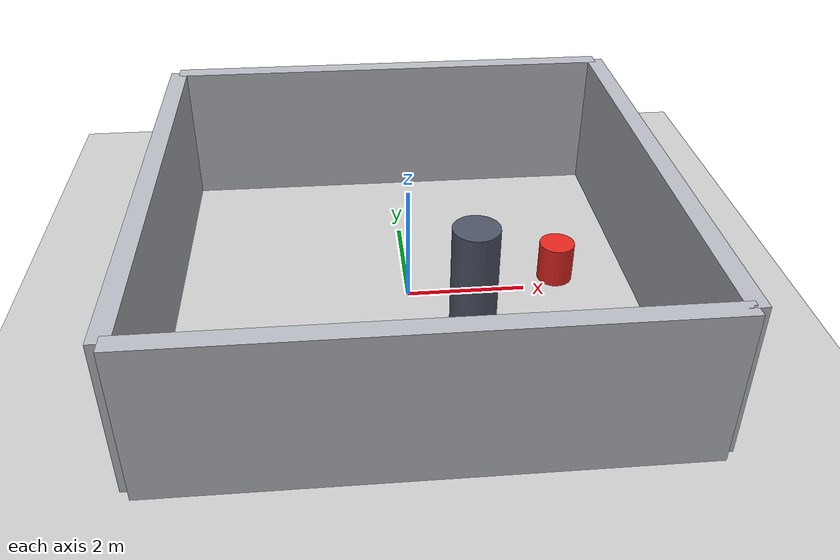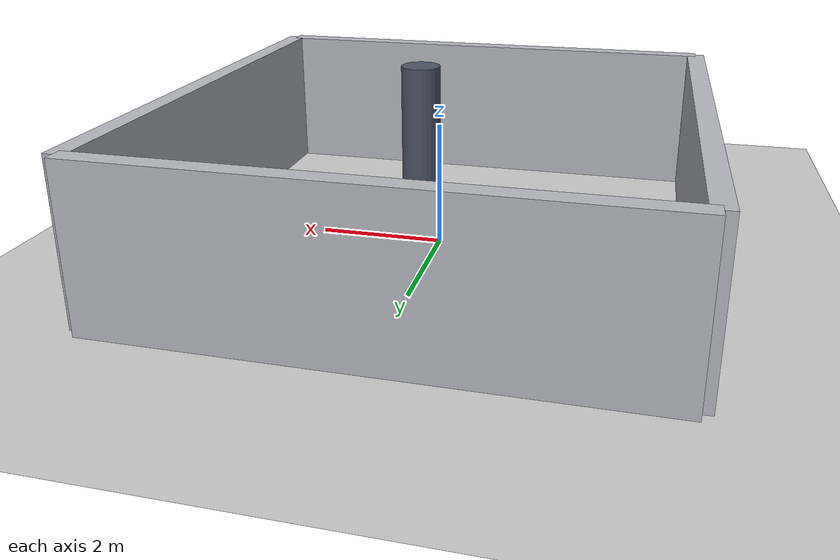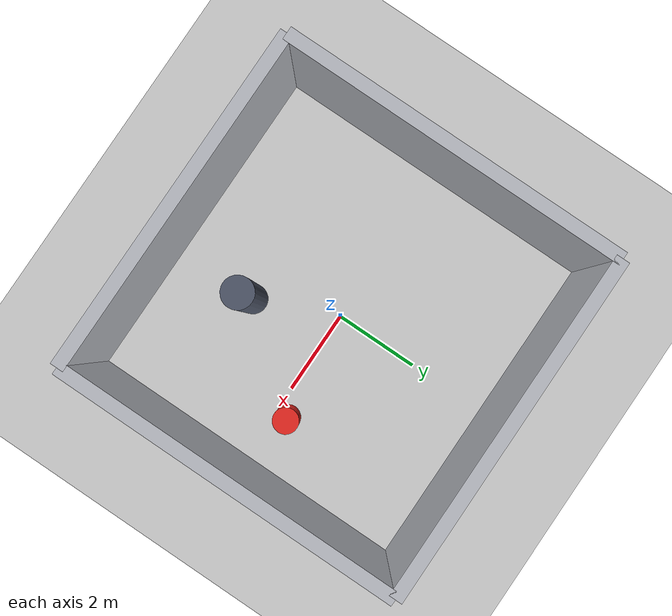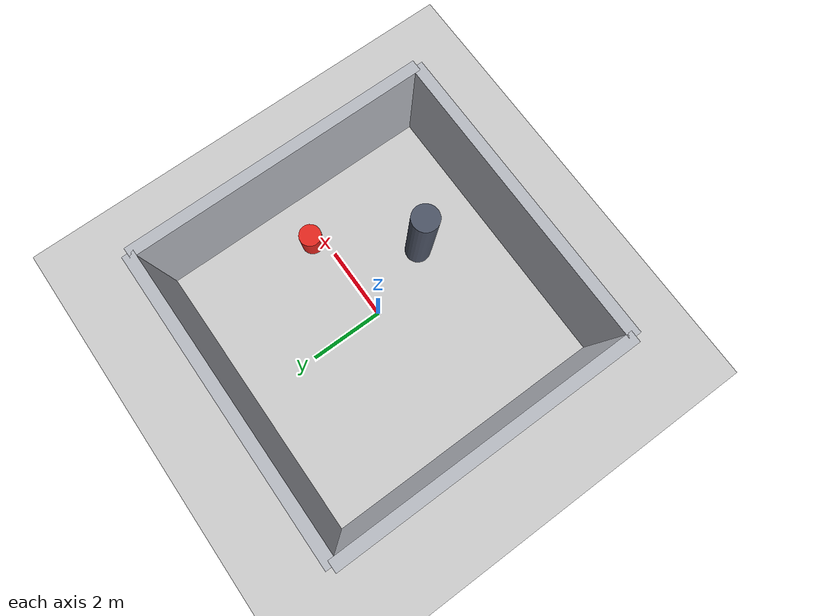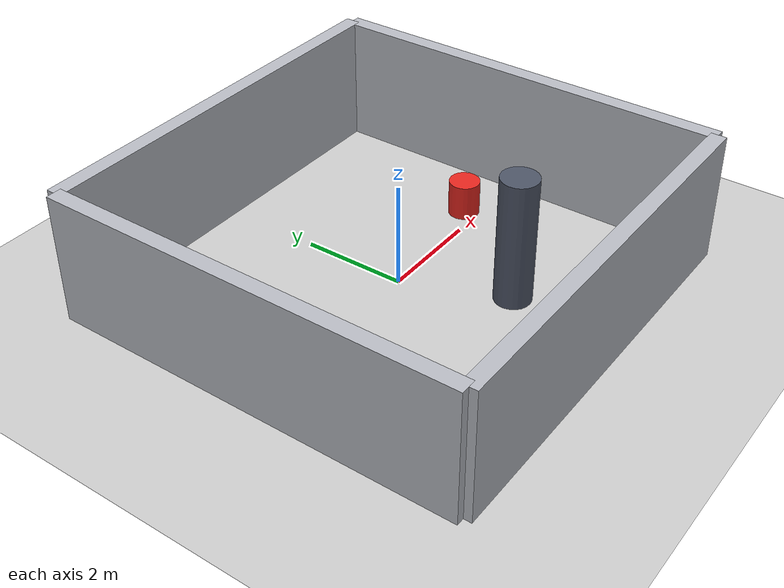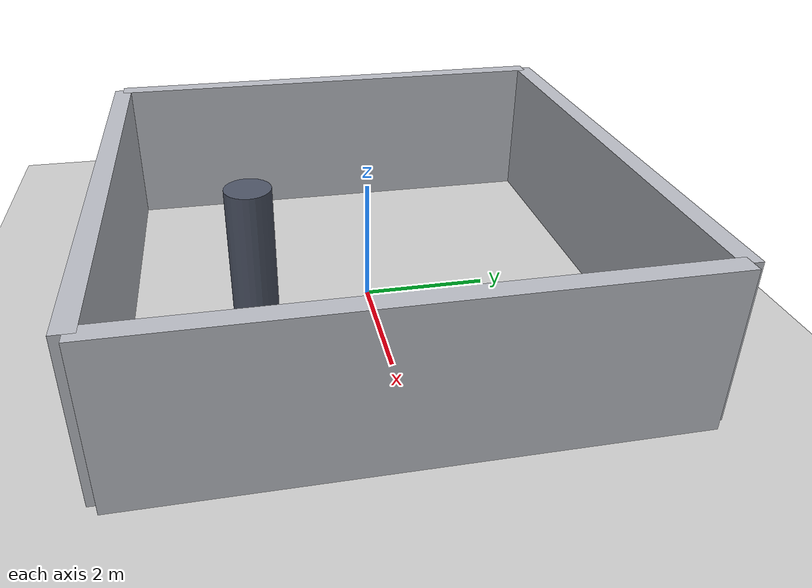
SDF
<?xml version="1.0"?>
<sdf version="1.6">
  <world name="uav_world">

    <physics type="ode">
      <max_step_size>0.004</max_step_size>
      <real_time_factor>0.8</real_time_factor>
    </physics>

    <include><uri>model://sun</uri></include>
    <include><uri>model://ground_plane</uri></include>

    <!-- 8m x 8m 灏侀棴鍦哄湴锛氬洓闈㈠锛屾棤浜烘満鍦ㄩ噷闈㈣嚜涓婚伩闅?-->
    <model name="wall_north">
      <static>true</static>
      <pose>0 4.0 1.25 0 0 0</pose>
      <link name="link">
        <collision name="col"><geometry><box><size>8.0 0.3 2.5</size></box></geometry></collision>
        <visual name="vis">
          <geometry><box><size>8.0 0.3 2.5</size></box></geometry>
          <material><ambient>0.55 0.56 0.6 1</ambient><diffuse>0.72 0.73 0.76 1</diffuse></material>
        </visual>
      </link>
    </model>

    <model name="wall_south">
      <static>true</static>
      <pose>0 -4.0 1.25 0 0 0</pose>
      <link name="link">
        <collision name="col"><geometry><box><size>8.0 0.3 2.5</size></box></geometry></collision>
        <visual name="vis">
          <geometry><box><size>8.0 0.3 2.5</size></box></geometry>
          <material><ambient>0.55 0.56 0.6 1</ambient><diffuse>0.72 0.73 0.76 1</diffuse></material>
        </visual>
      </link>
    </model>

    <model name="wall_east">
      <static>true</static>
      <pose>4.0 0 1.25 0 0 0</pose>
      <link name="link">
        <collision name="col"><geometry><box><size>0.3 8.0 2.5</size></box></geometry></collision>
        <visual name="vis">
          <geometry><box><size>0.3 8.0 2.5</size></box></geometry>
          <material><ambient>0.55 0.56 0.6 1</ambient><diffuse>0.72 0.73 0.76 1</diffuse></material>
        </visual>
      </link>
    </model>

    <model name="wall_west">
      <static>true</static>
      <pose>-4.0 0 1.25 0 0 0</pose>
      <link name="link">
        <collision name="col"><geometry><box><size>0.3 8.0 2.5</size></box></geometry></collision>
        <visual name="vis">
          <geometry><box><size>0.3 8.0 2.5</size></box></geometry>
          <material><ambient>0.55 0.56 0.6 1</ambient><diffuse>0.72 0.73 0.76 1</diffuse></material>
        </visual>
      </link>
    </model>

    <!-- 鍦哄湴涓ぎ鐨勬煴瀛愶細鍒堕€犻渶瑕佺粫琛岀殑闅滅 -->
    <model name="pillar_center">
      <static>true</static>
      <pose>0.8 -1.9 1.25 0 0 0</pose>
      <link name="link">
        <collision name="col"><geometry><cylinder><radius>0.35</radius><length>2.5</length></cylinder></geometry></collision>
        <visual name="vis">
          <geometry><cylinder><radius>0.35</radius><length>2.5</length></cylinder></geometry>
          <material><ambient>0.2 0.22 0.28 1</ambient><diffuse>0.3 0.33 0.4 1</diffuse></material>
        </visual>
      </link>
    </model>

    <!-- 绾㈣壊鐩爣妗讹細鐣欑粰鍚庣画瑙嗚浠诲姟 -->
    <model name="target_barrel">
      <static>true</static>
      <pose>2.6 0.3 0.35 0 0 0</pose>
      <link name="link">
        <collision name="col"><geometry><cylinder><radius>0.3</radius><length>0.7</length></cylinder></geometry></collision>
        <visual name="vis">
          <geometry><cylinder><radius>0.3</radius><length>0.7</length></cylinder></geometry>
          <material><ambient>0.8 0.1 0.1 1</ambient><diffuse>0.9 0.15 0.12 1</diffuse></material>
        </visual>
      </link>
    </model>

    <gui fullscreen="0">
      <camera name="user_camera">
        <pose>-8 -8 6 0 0.35 0.78</pose>
      </camera>
    </gui>

  </world>
</sdf>
